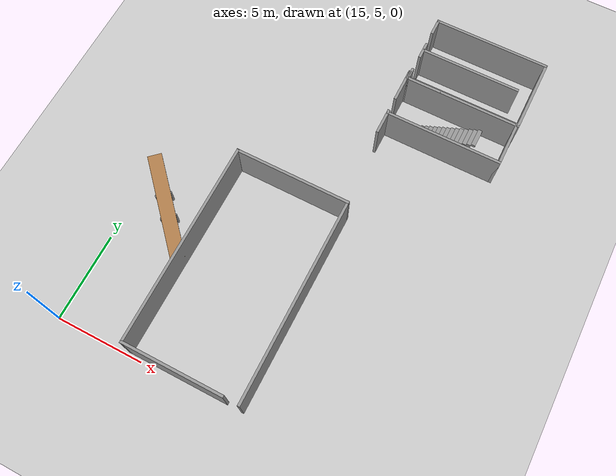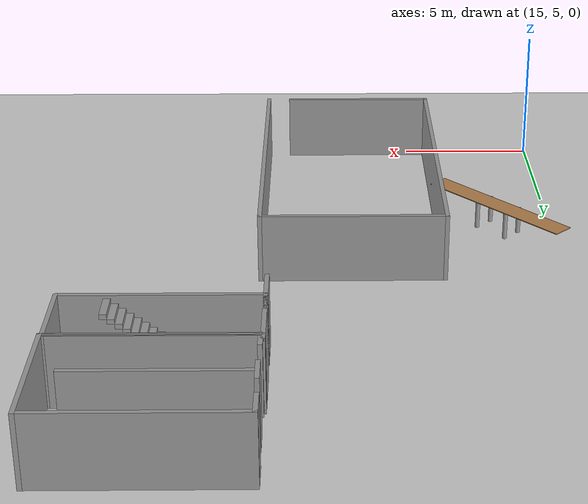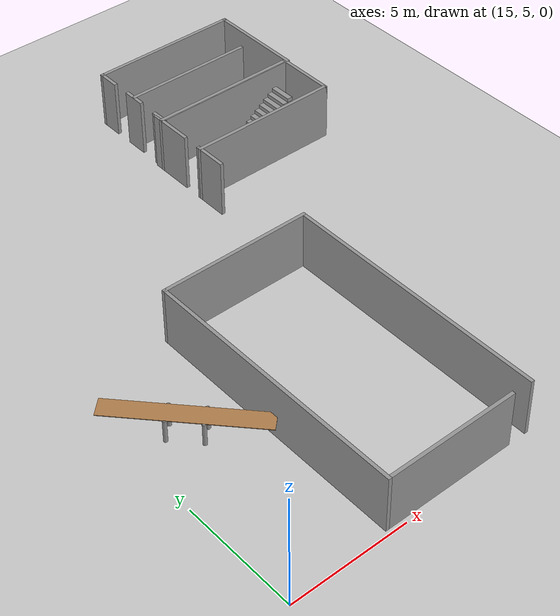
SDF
<sdf version="1.6">
 <world name="default">
  <model name="ground_plane">
   <static>1</static>
   <link name="link">
    <collision name="collision">
     <geometry><plane><normal>0 0 1</normal><size>100 100</size></plane></geometry>
     <surface>
      <contact><collide_bitmask>65535</collide_bitmask></contact>
      <friction><ode><mu>100</mu><mu2>50</mu2></ode></friction>
     </surface>
    </collision>
    <visual name="visual">
     <cast_shadows>0</cast_shadows>
     <geometry><plane><normal>0 0 1</normal><size>100 100</size></plane></geometry>
     <material>
      <script><uri>file://media/materials/scripts/gazebo.material</uri><name>Gazebo/Grey</name></script>
     </material>
    </visual>
   </link>
  </model>
  <model name="tables">
   <link name="link_clone">
    <inertial>
     <inertia><ixx>0</ixx><ixy>0</ixy><ixz>0</ixz><iyy>0</iyy><iyz>0</iyz><izz>0</izz></inertia>
     <mass>0</mass>
    </inertial>
    <pose>5.11817 -1.9765 0 0 0 -0.822567</pose>
    <visual name="back_right_leg">
     <pose>-0.68 -0.38 0.5 0 -0 0</pose>
     <geometry><cylinder><radius>0.0825123</radius><length>1</length></cylinder></geometry>
     <material>
      <script><uri>file://media/materials/scripts/gazebo.material</uri><name>Gazebo/Grey</name></script>
      <shader type="pixel"/>
     </material>
    </visual>
    <visual name="back_left_leg">
     <pose>-0.68 0.38 0.5 0 -0 0</pose>
     <geometry><cylinder><radius>0.0825123</radius><length>1</length></cylinder></geometry>
     <material>
      <script><uri>file://media/materials/scripts/gazebo.material</uri><name>Gazebo/Grey</name></script>
      <shader type="pixel"/>
     </material>
    </visual>
    <visual name="front_left_leg">
     <pose>0.68 0.38 0.5 0 -0 0</pose>
     <geometry><cylinder><radius>0.0825123</radius><length>1</length></cylinder></geometry>
     <material>
      <script><uri>file://media/materials/scripts/gazebo.material</uri><name>Gazebo/Grey</name></script>
      <shader type="pixel"/>
     </material>
    </visual>
    <visual name="front_right_leg">
     <pose>0.68 -0.38 0.5 0 -0 0</pose>
     <geometry><cylinder><radius>0.0825123</radius><length>1</length></cylinder></geometry>
     <material>
      <script><uri>file://media/materials/scripts/gazebo.material</uri><name>Gazebo/Grey</name></script>
      <shader type="pixel"/>
     </material>
    </visual>
    <visual name="visual1">
     <pose>0 0 1 0 -0 0</pose>
     <geometry><box><size>6.1884 0.8 0.03</size></box></geometry>
     <material>
      <script><uri>file://media/materials/scripts/gazebo.material</uri><name>Gazebo/Wood</name></script>
      <shader type="pixel"/>
     </material>
    </visual>
    <collision name="surface">
     <pose>0 0 1 0 -0 0</pose>
     <geometry><box><size>6.1884 0.8 0.03</size></box></geometry>
     <surface>
      <friction>
       <ode><mu>1</mu><mu2>1</mu2><fdir1>0 0 0</fdir1><slip1>0</slip1><slip2>0</slip2></ode>
       <torsional>
        <coefficient>1</coefficient>
        <patch_radius>0</patch_radius>
        <surface_radius>0</surface_radius>
        <use_patch_radius>1</use_patch_radius>
        <ode><slip>0</slip></ode>
       </torsional>
      </friction>
      <bounce><restitution_coefficient>0</restitution_coefficient><threshold>1e+06</threshold></bounce>
      <contact>
       <collide_without_contact>0</collide_without_contact>
       <collide_without_contact_bitmask>1</collide_without_contact_bitmask>
       <collide_bitmask>1</collide_bitmask>
       <ode>
        <soft_cfm>0</soft_cfm>
        <soft_erp>0.2</soft_erp>
        <kp>1e+13</kp>
        <kd>1</kd>
        <max_vel>0.01</max_vel>
        <min_depth>0</min_depth>
       </ode>
       <bullet>
        <split_impulse>1</split_impulse>
        <split_impulse_penetration_threshold>-0.01</split_impulse_penetration_threshold>
        <soft_cfm>0</soft_cfm>
        <soft_erp>0.2</soft_erp>
        <kp>1e+13</kp>
        <kd>1</kd>
       </bullet>
      </contact>
     </surface>
    </collision>
    <collision name="front_left_leg_0">
     <pose>0.68 0.38 0.5 0 -0 0</pose>
     <geometry><cylinder><radius>0.082512</radius><length>1</length></cylinder></geometry>
     <surface>
      <friction>
       <ode><mu>1</mu><mu2>1</mu2><fdir1>0 0 0</fdir1><slip1>0</slip1><slip2>0</slip2></ode>
       <torsional>
        <coefficient>1</coefficient>
        <patch_radius>0</patch_radius>
        <surface_radius>0</surface_radius>
        <use_patch_radius>1</use_patch_radius>
        <ode><slip>0</slip></ode>
       </torsional>
      </friction>
      <bounce><restitution_coefficient>0</restitution_coefficient><threshold>1e+06</threshold></bounce>
      <contact>
       <collide_without_contact>0</collide_without_contact>
       <collide_without_contact_bitmask>1</collide_without_contact_bitmask>
       <collide_bitmask>1</collide_bitmask>
       <ode>
        <soft_cfm>0</soft_cfm>
        <soft_erp>0.2</soft_erp>
        <kp>1e+13</kp>
        <kd>1</kd>
        <max_vel>0.01</max_vel>
        <min_depth>0</min_depth>
       </ode>
       <bullet>
        <split_impulse>1</split_impulse>
        <split_impulse_penetration_threshold>-0.01</split_impulse_penetration_threshold>
        <soft_cfm>0</soft_cfm>
        <soft_erp>0.2</soft_erp>
        <kp>1e+13</kp>
        <kd>1</kd>
       </bullet>
      </contact>
     </surface>
    </collision>
    <collision name="front_right_leg_0">
     <pose>0.68 -0.38 0.5 0 -0 0</pose>
     <geometry><cylinder><radius>0.082512</radius><length>1</length></cylinder></geometry>
     <surface>
      <friction>
       <ode><mu>1</mu><mu2>1</mu2><fdir1>0 0 0</fdir1><slip1>0</slip1><slip2>0</slip2></ode>
       <torsional>
        <coefficient>1</coefficient>
        <patch_radius>0</patch_radius>
        <surface_radius>0</surface_radius>
        <use_patch_radius>1</use_patch_radius>
        <ode><slip>0</slip></ode>
       </torsional>
      </friction>
      <bounce><restitution_coefficient>0</restitution_coefficient><threshold>1e+06</threshold></bounce>
      <contact>
       <collide_without_contact>0</collide_without_contact>
       <collide_without_contact_bitmask>1</collide_without_contact_bitmask>
       <collide_bitmask>1</collide_bitmask>
       <ode>
        <soft_cfm>0</soft_cfm>
        <soft_erp>0.2</soft_erp>
        <kp>1e+13</kp>
        <kd>1</kd>
        <max_vel>0.01</max_vel>
        <min_depth>0</min_depth>
       </ode>
       <bullet>
        <split_impulse>1</split_impulse>
        <split_impulse_penetration_threshold>-0.01</split_impulse_penetration_threshold>
        <soft_cfm>0</soft_cfm>
        <soft_erp>0.2</soft_erp>
        <kp>1e+13</kp>
        <kd>1</kd>
       </bullet>
      </contact>
     </surface>
    </collision>
    <collision name="back_left_leg_0">
     <pose>-0.68 0.38 0.5 0 -0 0</pose>
     <geometry><cylinder><radius>0.082512</radius><length>1</length></cylinder></geometry>
     <surface>
      <friction>
       <ode><mu>1</mu><mu2>1</mu2><fdir1>0 0 0</fdir1><slip1>0</slip1><slip2>0</slip2></ode>
       <torsional>
        <coefficient>1</coefficient>
        <patch_radius>0</patch_radius>
        <surface_radius>0</surface_radius>
        <use_patch_radius>1</use_patch_radius>
        <ode><slip>0</slip></ode>
       </torsional>
      </friction>
      <bounce><restitution_coefficient>0</restitution_coefficient><threshold>1e+06</threshold></bounce>
      <contact>
       <collide_without_contact>0</collide_without_contact>
       <collide_without_contact_bitmask>1</collide_without_contact_bitmask>
       <collide_bitmask>1</collide_bitmask>
       <ode>
        <soft_cfm>0</soft_cfm>
        <soft_erp>0.2</soft_erp>
        <kp>1e+13</kp>
        <kd>1</kd>
        <max_vel>0.01</max_vel>
        <min_depth>0</min_depth>
       </ode>
       <bullet>
        <split_impulse>1</split_impulse>
        <split_impulse_penetration_threshold>-0.01</split_impulse_penetration_threshold>
        <soft_cfm>0</soft_cfm>
        <soft_erp>0.2</soft_erp>
        <kp>1e+13</kp>
        <kd>1</kd>
       </bullet>
      </contact>
     </surface>
    </collision>
    <collision name="back_right_leg_0">
     <pose>-0.68 -0.38 0.5 0 -0 0</pose>
     <geometry><cylinder><radius>0.082512</radius><length>1</length></cylinder></geometry>
     <surface>
      <friction>
       <ode><mu>1</mu><mu2>1</mu2><fdir1>0 0 0</fdir1><slip1>0</slip1><slip2>0</slip2></ode>
       <torsional>
        <coefficient>1</coefficient>
        <patch_radius>0</patch_radius>
        <surface_radius>0</surface_radius>
        <use_patch_radius>1</use_patch_radius>
        <ode><slip>0</slip></ode>
       </torsional>
      </friction>
      <bounce><restitution_coefficient>0</restitution_coefficient><threshold>1e+06</threshold></bounce>
      <contact>
       <collide_without_contact>0</collide_without_contact>
       <collide_without_contact_bitmask>1</collide_without_contact_bitmask>
       <collide_bitmask>1</collide_bitmask>
       <ode>
        <soft_cfm>0</soft_cfm>
        <soft_erp>0.2</soft_erp>
        <kp>1e+13</kp>
        <kd>1</kd>
        <max_vel>0.01</max_vel>
        <min_depth>0</min_depth>
       </ode>
       <bullet>
        <split_impulse>1</split_impulse>
        <split_impulse_penetration_threshold>-0.01</split_impulse_penetration_threshold>
        <soft_cfm>0</soft_cfm>
        <soft_erp>0.2</soft_erp>
        <kp>1e+13</kp>
        <kd>1</kd>
       </bullet>
      </contact>
     </surface>
    </collision>
   </link>
   <static>1</static>
   <pose>11.8893 14.6757 0 0 -0 0</pose>
  </model>
  <model name="Staircase_4">
   <pose>28.6752 23.2459 0 0 -0 0</pose>
   <link name="Stairs_0">
    <visual name="Stairs_0_Visual_0">
     <pose>-1.63333 -0 0.083333 0 -0 1.5708</pose>
     <geometry><box><size>1 0.233333 0.166667</size></box></geometry>
     <material>
      <script><uri>file://media/materials/scripts/gazebo.material</uri><name>Gazebo/Grey</name></script>
      <ambient>1 1 1 1</ambient>
     </material>
     <meta><layer>0</layer></meta>
    </visual>
    <collision name="Stairs_0_Collision_0">
     <geometry><box><size>1 0.233333 0.166667</size></box></geometry>
     <pose>-1.63333 -0 0.083333 0 -0 1.5708</pose>
    </collision>
    <visual name="Stairs_0_Visual_1">
     <pose>-1.4 -0 0.25 0 -0 1.5708</pose>
     <geometry><box><size>1 0.233333 0.166667</size></box></geometry>
     <material>
      <script><uri>file://media/materials/scripts/gazebo.material</uri><name>Gazebo/Grey</name></script>
      <ambient>1 1 1 1</ambient>
     </material>
     <meta><layer>0</layer></meta>
    </visual>
    <collision name="Stairs_0_Collision_1">
     <geometry><box><size>1 0.233333 0.166667</size></box></geometry>
     <pose>-1.4 -0 0.25 0 -0 1.5708</pose>
    </collision>
    <visual name="Stairs_0_Visual_2">
     <pose>-1.16667 -0 0.416667 0 -0 1.5708</pose>
     <geometry><box><size>1 0.233333 0.166667</size></box></geometry>
     <material>
      <script><uri>file://media/materials/scripts/gazebo.material</uri><name>Gazebo/Grey</name></script>
      <ambient>1 1 1 1</ambient>
     </material>
     <meta><layer>0</layer></meta>
    </visual>
    <collision name="Stairs_0_Collision_2">
     <geometry><box><size>1 0.233333 0.166667</size></box></geometry>
     <pose>-1.16667 -0 0.416667 0 -0 1.5708</pose>
    </collision>
    <visual name="Stairs_0_Visual_3">
     <pose>-0.933333 -0 0.583333 0 -0 1.5708</pose>
     <geometry><box><size>1 0.233333 0.166667</size></box></geometry>
     <material>
      <script><uri>file://media/materials/scripts/gazebo.material</uri><name>Gazebo/Grey</name></script>
      <ambient>1 1 1 1</ambient>
     </material>
     <meta><layer>0</layer></meta>
    </visual>
    <collision name="Stairs_0_Collision_3">
     <geometry><box><size>1 0.233333 0.166667</size></box></geometry>
     <pose>-0.933333 -0 0.583333 0 -0 1.5708</pose>
    </collision>
    <visual name="Stairs_0_Visual_4">
     <pose>-0.7 0 0.75 0 -0 1.5708</pose>
     <geometry><box><size>1 0.233333 0.166667</size></box></geometry>
     <material>
      <script><uri>file://media/materials/scripts/gazebo.material</uri><name>Gazebo/Grey</name></script>
      <ambient>1 1 1 1</ambient>
     </material>
     <meta><layer>0</layer></meta>
    </visual>
    <collision name="Stairs_0_Collision_4">
     <geometry><box><size>1 0.233333 0.166667</size></box></geometry>
     <pose>-0.7 0 0.75 0 -0 1.5708</pose>
    </collision>
    <visual name="Stairs_0_Visual_5">
     <pose>-0.466667 0 0.916667 0 -0 1.5708</pose>
     <geometry><box><size>1 0.233333 0.166667</size></box></geometry>
     <material>
      <script><uri>file://media/materials/scripts/gazebo.material</uri><name>Gazebo/Grey</name></script>
      <ambient>1 1 1 1</ambient>
     </material>
     <meta><layer>0</layer></meta>
    </visual>
    <collision name="Stairs_0_Collision_5">
     <geometry><box><size>1 0.233333 0.166667</size></box></geometry>
     <pose>-0.466667 0 0.916667 0 -0 1.5708</pose>
    </collision>
    <visual name="Stairs_0_Visual_6">
     <pose>-0.233333 0 1.08333 0 -0 1.5708</pose>
     <geometry><box><size>1 0.233333 0.166667</size></box></geometry>
     <material>
      <script><uri>file://media/materials/scripts/gazebo.material</uri><name>Gazebo/Grey</name></script>
      <ambient>1 1 1 1</ambient>
     </material>
     <meta><layer>0</layer></meta>
    </visual>
    <collision name="Stairs_0_Collision_6">
     <geometry><box><size>1 0.233333 0.166667</size></box></geometry>
     <pose>-0.233333 0 1.08333 0 -0 1.5708</pose>
    </collision>
    <visual name="Stairs_0_Visual_7">
     <pose>0 0 1.25 0 -0 1.5708</pose>
     <geometry><box><size>1 0.233333 0.166667</size></box></geometry>
     <material>
      <script><uri>file://media/materials/scripts/gazebo.material</uri><name>Gazebo/Grey</name></script>
      <ambient>1 1 1 1</ambient>
     </material>
     <meta><layer>0</layer></meta>
    </visual>
    <collision name="Stairs_0_Collision_7">
     <geometry><box><size>1 0.233333 0.166667</size></box></geometry>
     <pose>0 0 1.25 0 -0 1.5708</pose>
    </collision>
    <visual name="Stairs_0_Visual_8">
     <pose>0.233333 0 1.41667 0 -0 1.5708</pose>
     <geometry><box><size>1 0.233333 0.166667</size></box></geometry>
     <material>
      <script><uri>file://media/materials/scripts/gazebo.material</uri><name>Gazebo/Grey</name></script>
      <ambient>1 1 1 1</ambient>
     </material>
     <meta><layer>0</layer></meta>
    </visual>
    <collision name="Stairs_0_Collision_8">
     <geometry><box><size>1 0.233333 0.166667</size></box></geometry>
     <pose>0.233333 0 1.41667 0 -0 1.5708</pose>
    </collision>
    <visual name="Stairs_0_Visual_9">
     <pose>0.466667 0 1.58333 0 -0 1.5708</pose>
     <geometry><box><size>1 0.233333 0.166667</size></box></geometry>
     <material>
      <script><uri>file://media/materials/scripts/gazebo.material</uri><name>Gazebo/Grey</name></script>
      <ambient>1 1 1 1</ambient>
     </material>
     <meta><layer>0</layer></meta>
    </visual>
    <collision name="Stairs_0_Collision_9">
     <geometry><box><size>1 0.233333 0.166667</size></box></geometry>
     <pose>0.466667 0 1.58333 0 -0 1.5708</pose>
    </collision>
    <visual name="Stairs_0_Visual_10">
     <pose>0.7 0 1.75 0 -0 1.5708</pose>
     <geometry><box><size>1 0.233333 0.166667</size></box></geometry>
     <material>
      <script><uri>file://media/materials/scripts/gazebo.material</uri><name>Gazebo/Grey</name></script>
      <ambient>1 1 1 1</ambient>
     </material>
     <meta><layer>0</layer></meta>
    </visual>
    <collision name="Stairs_0_Collision_10">
     <geometry><box><size>1 0.233333 0.166667</size></box></geometry>
     <pose>0.7 0 1.75 0 -0 1.5708</pose>
    </collision>
    <visual name="Stairs_0_Visual_11">
     <pose>0.933334 0 1.91667 0 -0 1.5708</pose>
     <geometry><box><size>1 0.233333 0.166667</size></box></geometry>
     <material>
      <script><uri>file://media/materials/scripts/gazebo.material</uri><name>Gazebo/Grey</name></script>
      <ambient>1 1 1 1</ambient>
     </material>
     <meta><layer>0</layer></meta>
    </visual>
    <collision name="Stairs_0_Collision_11">
     <geometry><box><size>1 0.233333 0.166667</size></box></geometry>
     <pose>0.933334 0 1.91667 0 -0 1.5708</pose>
    </collision>
    <visual name="Stairs_0_Visual_12">
     <pose>1.16667 0 2.08333 0 -0 1.5708</pose>
     <geometry><box><size>1 0.233333 0.166667</size></box></geometry>
     <material>
      <script><uri>file://media/materials/scripts/gazebo.material</uri><name>Gazebo/Grey</name></script>
      <ambient>1 1 1 1</ambient>
     </material>
     <meta><layer>0</layer></meta>
    </visual>
    <collision name="Stairs_0_Collision_12">
     <geometry><box><size>1 0.233333 0.166667</size></box></geometry>
     <pose>1.16667 0 2.08333 0 -0 1.5708</pose>
    </collision>
    <visual name="Stairs_0_Visual_13">
     <pose>1.4 0 2.25 0 -0 1.5708</pose>
     <geometry><box><size>1 0.233333 0.166667</size></box></geometry>
     <material>
      <script><uri>file://media/materials/scripts/gazebo.material</uri><name>Gazebo/Grey</name></script>
      <ambient>1 1 1 1</ambient>
     </material>
     <meta><layer>0</layer></meta>
    </visual>
    <collision name="Stairs_0_Collision_13">
     <geometry><box><size>1 0.233333 0.166667</size></box></geometry>
     <pose>1.4 0 2.25 0 -0 1.5708</pose>
    </collision>
    <visual name="Stairs_0_Visual_14">
     <pose>1.63333 0 2.41667 0 -0 1.5708</pose>
     <geometry><box><size>1 0.233333 0.166667</size></box></geometry>
     <material>
      <script><uri>file://media/materials/scripts/gazebo.material</uri><name>Gazebo/Grey</name></script>
      <ambient>1 1 1 1</ambient>
     </material>
     <meta><layer>0</layer></meta>
    </visual>
    <collision name="Stairs_0_Collision_14">
     <geometry><box><size>1 0.233333 0.166667</size></box></geometry>
     <pose>1.63333 0 2.41667 0 -0 1.5708</pose>
    </collision>
   </link>
   <static>1</static>
  </model>
  <model name="108">
   <link name="Wall_5">
    <pose>3.259 0 0 0 -0 1.5708</pose>
    <visual name="Wall_5_Visual">
     <pose>0 0 1.25 0 -0 0</pose>
     <geometry><box><size>11.668 0.15 2.5</size></box></geometry>
     <material>
      <script><uri>file://media/materials/scripts/gazebo.material</uri><name>Gazebo/Grey</name></script>
      <ambient>1 1 1 1</ambient>
      <shader type="pixel"/>
     </material>
     <meta><layer>0</layer></meta>
    </visual>
    <collision name="Wall_5_Collision">
     <pose>0 0 1.25 0 -0 0</pose>
     <geometry><box><size>11.668 0.15 2.5</size></box></geometry>
     <surface>
      <friction>
       <ode><mu>1</mu><mu2>1</mu2><fdir1>0 0 0</fdir1><slip1>0</slip1><slip2>0</slip2></ode>
       <torsional>
        <coefficient>1</coefficient>
        <patch_radius>0</patch_radius>
        <surface_radius>0</surface_radius>
        <use_patch_radius>1</use_patch_radius>
        <ode><slip>0</slip></ode>
       </torsional>
      </friction>
      <bounce><restitution_coefficient>0</restitution_coefficient><threshold>1e+06</threshold></bounce>
      <contact>
       <collide_without_contact>0</collide_without_contact>
       <collide_without_contact_bitmask>1</collide_without_contact_bitmask>
       <collide_bitmask>1</collide_bitmask>
       <ode>
        <soft_cfm>0</soft_cfm>
        <soft_erp>0.2</soft_erp>
        <kp>1e+13</kp>
        <kd>1</kd>
        <max_vel>0.01</max_vel>
        <min_depth>0</min_depth>
       </ode>
       <bullet>
        <split_impulse>1</split_impulse>
        <split_impulse_penetration_threshold>-0.01</split_impulse_penetration_threshold>
        <soft_cfm>0</soft_cfm>
        <soft_erp>0.2</soft_erp>
        <kp>1e+13</kp>
        <kd>1</kd>
       </bullet>
      </contact>
     </surface>
    </collision>
   </link>
   <link name="Wall_6">
    <pose>0 5.759 0 0 -0 3.14159</pose>
    <visual name="Wall_6_Visual">
     <pose>0 0 1.25 0 -0 0</pose>
     <geometry><box><size>6.668 0.15 2.5</size></box></geometry>
     <material>
      <script><uri>file://media/materials/scripts/gazebo.material</uri><name>Gazebo/Grey</name></script>
      <ambient>1 1 1 1</ambient>
      <shader type="pixel"/>
     </material>
     <meta><layer>0</layer></meta>
    </visual>
    <collision name="Wall_6_Collision">
     <pose>0 0 1.25 0 -0 0</pose>
     <geometry><box><size>6.668 0.15 2.5</size></box></geometry>
     <surface>
      <friction>
       <ode><mu>1</mu><mu2>1</mu2><fdir1>0 0 0</fdir1><slip1>0</slip1><slip2>0</slip2></ode>
       <torsional>
        <coefficient>1</coefficient>
        <patch_radius>0</patch_radius>
        <surface_radius>0</surface_radius>
        <use_patch_radius>1</use_patch_radius>
        <ode><slip>0</slip></ode>
       </torsional>
      </friction>
      <bounce><restitution_coefficient>0</restitution_coefficient><threshold>1e+06</threshold></bounce>
      <contact>
       <collide_without_contact>0</collide_without_contact>
       <collide_without_contact_bitmask>1</collide_without_contact_bitmask>
       <collide_bitmask>1</collide_bitmask>
       <ode>
        <soft_cfm>0</soft_cfm>
        <soft_erp>0.2</soft_erp>
        <kp>1e+13</kp>
        <kd>1</kd>
        <max_vel>0.01</max_vel>
        <min_depth>0</min_depth>
       </ode>
       <bullet>
        <split_impulse>1</split_impulse>
        <split_impulse_penetration_threshold>-0.01</split_impulse_penetration_threshold>
        <soft_cfm>0</soft_cfm>
        <soft_erp>0.2</soft_erp>
        <kp>1e+13</kp>
        <kd>1</kd>
       </bullet>
      </contact>
     </surface>
    </collision>
   </link>
   <link name="Wall_7">
    <pose>-3.259 0 0 0 0 -1.5708</pose>
    <visual name="Wall_7_Visual">
     <pose>0 0 1.25 0 -0 0</pose>
     <geometry><box><size>11.6684 0.15 2.5</size></box></geometry>
     <material>
      <script><uri>file://media/materials/scripts/gazebo.material</uri><name>Gazebo/Grey</name></script>
      <ambient>1 1 1 1</ambient>
      <shader type="pixel"/>
     </material>
     <meta><layer>0</layer></meta>
    </visual>
    <collision name="Wall_7_Collision">
     <pose>0 0 1.25 0 -0 0</pose>
     <geometry><box><size>11.6684 0.15 2.5</size></box></geometry>
     <surface>
      <friction>
       <ode><mu>1</mu><mu2>1</mu2><fdir1>0 0 0</fdir1><slip1>0</slip1><slip2>0</slip2></ode>
       <torsional>
        <coefficient>1</coefficient>
        <patch_radius>0</patch_radius>
        <surface_radius>0</surface_radius>
        <use_patch_radius>1</use_patch_radius>
        <ode><slip>0</slip></ode>
       </torsional>
      </friction>
      <bounce><restitution_coefficient>0</restitution_coefficient><threshold>1e+06</threshold></bounce>
      <contact>
       <collide_without_contact>0</collide_without_contact>
       <collide_without_contact_bitmask>1</collide_without_contact_bitmask>
       <collide_bitmask>1</collide_bitmask>
       <ode>
        <soft_cfm>0</soft_cfm>
        <soft_erp>0.2</soft_erp>
        <kp>1e+13</kp>
        <kd>1</kd>
        <max_vel>0.01</max_vel>
        <min_depth>0</min_depth>
       </ode>
       <bullet>
        <split_impulse>1</split_impulse>
        <split_impulse_penetration_threshold>-0.01</split_impulse_penetration_threshold>
        <soft_cfm>0</soft_cfm>
        <soft_erp>0.2</soft_erp>
        <kp>1e+13</kp>
        <kd>1</kd>
       </bullet>
      </contact>
     </surface>
    </collision>
   </link>
   <link name="Wall_9">
    <pose>-0.459 -5.759 0 0 -0 0</pose>
    <visual name="Wall_9_Visual">
     <pose>0 0 1.25 0 -0 0</pose>
     <geometry><box><size>5.75 0.15 2.5</size></box></geometry>
     <material>
      <script><uri>file://media/materials/scripts/gazebo.material</uri><name>Gazebo/Grey</name></script>
      <ambient>1 1 1 1</ambient>
      <shader type="pixel"/>
     </material>
     <meta><layer>0</layer></meta>
    </visual>
    <collision name="Wall_9_Collision">
     <pose>0 0 1.25 0 -0 0</pose>
     <geometry><box><size>5.75 0.15 2.5</size></box></geometry>
     <surface>
      <friction>
       <ode><mu>1</mu><mu2>1</mu2><fdir1>0 0 0</fdir1><slip1>0</slip1><slip2>0</slip2></ode>
       <torsional>
        <coefficient>1</coefficient>
        <patch_radius>0</patch_radius>
        <surface_radius>0</surface_radius>
        <use_patch_radius>1</use_patch_radius>
        <ode><slip>0</slip></ode>
       </torsional>
      </friction>
      <bounce><restitution_coefficient>0</restitution_coefficient><threshold>1e+06</threshold></bounce>
      <contact>
       <collide_without_contact>0</collide_without_contact>
       <collide_without_contact_bitmask>1</collide_without_contact_bitmask>
       <collide_bitmask>1</collide_bitmask>
       <ode>
        <soft_cfm>0</soft_cfm>
        <soft_erp>0.2</soft_erp>
        <kp>1e+13</kp>
        <kd>1</kd>
        <max_vel>0.01</max_vel>
        <min_depth>0</min_depth>
       </ode>
       <bullet>
        <split_impulse>1</split_impulse>
        <split_impulse_penetration_threshold>-0.01</split_impulse_penetration_threshold>
        <soft_cfm>0</soft_cfm>
        <soft_erp>0.2</soft_erp>
        <kp>1e+13</kp>
        <kd>1</kd>
       </bullet>
      </contact>
     </surface>
    </collision>
   </link>
   <static>1</static>
   <pose>22.5627 11.0031 0 0 -0 0</pose>
  </model>
  <model name="198C/D">
   <link name="Wall_71">
    <pose>0 -2.092 0 0 -0 0</pose>
    <visual name="Wall_71_Visual">
     <pose>0 0 1.25 0 -0 0</pose>
     <geometry><box><size>6.668 0.15 2.5</size></box></geometry>
     <material>
      <script><uri>file://media/materials/scripts/gazebo.material</uri><name>Gazebo/Grey</name></script>
      <ambient>1 1 1 1</ambient>
      <shader type="pixel"/>
     </material>
     <meta><layer>0</layer></meta>
    </visual>
    <collision name="Wall_71_Collision">
     <pose>0 0 1.25 0 -0 0</pose>
     <geometry><box><size>6.668 0.15 2.5</size></box></geometry>
     <surface>
      <friction>
       <ode><mu>1</mu><mu2>1</mu2><fdir1>0 0 0</fdir1><slip1>0</slip1><slip2>0</slip2></ode>
       <torsional>
        <coefficient>1</coefficient>
        <patch_radius>0</patch_radius>
        <surface_radius>0</surface_radius>
        <use_patch_radius>1</use_patch_radius>
        <ode><slip>0</slip></ode>
       </torsional>
      </friction>
      <bounce><restitution_coefficient>0</restitution_coefficient><threshold>1e+06</threshold></bounce>
      <contact>
       <collide_without_contact>0</collide_without_contact>
       <collide_without_contact_bitmask>1</collide_without_contact_bitmask>
       <collide_bitmask>1</collide_bitmask>
       <ode>
        <soft_cfm>0</soft_cfm>
        <soft_erp>0.2</soft_erp>
        <kp>1e+13</kp>
        <kd>1</kd>
        <max_vel>0.01</max_vel>
        <min_depth>0</min_depth>
       </ode>
       <bullet>
        <split_impulse>1</split_impulse>
        <split_impulse_penetration_threshold>-0.01</split_impulse_penetration_threshold>
        <soft_cfm>0</soft_cfm>
        <soft_erp>0.2</soft_erp>
        <kp>1e+13</kp>
        <kd>1</kd>
       </bullet>
      </contact>
     </surface>
    </collision>
   </link>
   <link name="Wall_72">
    <pose>3.259 0 0 0 -0 1.5708</pose>
    <visual name="Wall_72_Visual">
     <pose>0 0 1.25 0 -0 0</pose>
     <geometry><box><size>4.334 0.15 2.5</size></box></geometry>
     <material>
      <script><uri>file://media/materials/scripts/gazebo.material</uri><name>Gazebo/Grey</name></script>
      <ambient>1 1 1 1</ambient>
      <shader type="pixel"/>
     </material>
     <meta><layer>0</layer></meta>
    </visual>
    <collision name="Wall_72_Collision">
     <pose>0 0 1.25 0 -0 0</pose>
     <geometry><box><size>4.334 0.15 2.5</size></box></geometry>
     <surface>
      <friction>
       <ode><mu>1</mu><mu2>1</mu2><fdir1>0 0 0</fdir1><slip1>0</slip1><slip2>0</slip2></ode>
       <torsional>
        <coefficient>1</coefficient>
        <patch_radius>0</patch_radius>
        <surface_radius>0</surface_radius>
        <use_patch_radius>1</use_patch_radius>
        <ode><slip>0</slip></ode>
       </torsional>
      </friction>
      <bounce><restitution_coefficient>0</restitution_coefficient><threshold>1e+06</threshold></bounce>
      <contact>
       <collide_without_contact>0</collide_without_contact>
       <collide_without_contact_bitmask>1</collide_without_contact_bitmask>
       <collide_bitmask>1</collide_bitmask>
       <ode>
        <soft_cfm>0</soft_cfm>
        <soft_erp>0.2</soft_erp>
        <kp>1e+13</kp>
        <kd>1</kd>
        <max_vel>0.01</max_vel>
        <min_depth>0</min_depth>
       </ode>
       <bullet>
        <split_impulse>1</split_impulse>
        <split_impulse_penetration_threshold>-0.01</split_impulse_penetration_threshold>
        <soft_cfm>0</soft_cfm>
        <soft_erp>0.2</soft_erp>
        <kp>1e+13</kp>
        <kd>1</kd>
       </bullet>
      </contact>
     </surface>
    </collision>
   </link>
   <link name="Wall_73">
    <pose>0 2.092 0 0 -0 3.14159</pose>
    <visual name="Wall_73_Visual">
     <pose>0 0 1.25 0 -0 0</pose>
     <geometry><box><size>6.668 0.15 2.5</size></box></geometry>
     <material>
      <script><uri>file://media/materials/scripts/gazebo.material</uri><name>Gazebo/Grey</name></script>
      <ambient>1 1 1 1</ambient>
      <shader type="pixel"/>
     </material>
     <meta><layer>0</layer></meta>
    </visual>
    <collision name="Wall_73_Collision">
     <pose>0 0 1.25 0 -0 0</pose>
     <geometry><box><size>6.668 0.15 2.5</size></box></geometry>
     <surface>
      <friction>
       <ode><mu>1</mu><mu2>1</mu2><fdir1>0 0 0</fdir1><slip1>0</slip1><slip2>0</slip2></ode>
       <torsional>
        <coefficient>1</coefficient>
        <patch_radius>0</patch_radius>
        <surface_radius>0</surface_radius>
        <use_patch_radius>1</use_patch_radius>
        <ode><slip>0</slip></ode>
       </torsional>
      </friction>
      <bounce><restitution_coefficient>0</restitution_coefficient><threshold>1e+06</threshold></bounce>
      <contact>
       <collide_without_contact>0</collide_without_contact>
       <collide_without_contact_bitmask>1</collide_without_contact_bitmask>
       <collide_bitmask>1</collide_bitmask>
       <ode>
        <soft_cfm>0</soft_cfm>
        <soft_erp>0.2</soft_erp>
        <kp>1e+13</kp>
        <kd>1</kd>
        <max_vel>0.01</max_vel>
        <min_depth>0</min_depth>
       </ode>
       <bullet>
        <split_impulse>1</split_impulse>
        <split_impulse_penetration_threshold>-0.01</split_impulse_penetration_threshold>
        <soft_cfm>0</soft_cfm>
        <soft_erp>0.2</soft_erp>
        <kp>1e+13</kp>
        <kd>1</kd>
       </bullet>
      </contact>
     </surface>
    </collision>
   </link>
   <link name="Wall_78">
    <pose>-0.393448 -0.051035 0 0 -0 0</pose>
    <visual name="Wall_78_Visual">
     <pose>0 0 1.25 0 -0 0</pose>
     <geometry><box><size>5.75 0.15 2.5</size></box></geometry>
     <material>
      <script><uri>file://media/materials/scripts/gazebo.material</uri><name>Gazebo/Grey</name></script>
      <ambient>1 1 1 1</ambient>
      <shader type="pixel"/>
     </material>
     <meta><layer>0</layer></meta>
    </visual>
    <collision name="Wall_78_Collision">
     <pose>0 0 1.25 0 -0 0</pose>
     <geometry><box><size>5.75 0.15 2.5</size></box></geometry>
     <surface>
      <friction>
       <ode><mu>1</mu><mu2>1</mu2><fdir1>0 0 0</fdir1><slip1>0</slip1><slip2>0</slip2></ode>
       <torsional>
        <coefficient>1</coefficient>
        <patch_radius>0</patch_radius>
        <surface_radius>0</surface_radius>
        <use_patch_radius>1</use_patch_radius>
        <ode><slip>0</slip></ode>
       </torsional>
      </friction>
      <bounce><restitution_coefficient>0</restitution_coefficient><threshold>1e+06</threshold></bounce>
      <contact>
       <collide_without_contact>0</collide_without_contact>
       <collide_without_contact_bitmask>1</collide_without_contact_bitmask>
       <collide_bitmask>1</collide_bitmask>
       <ode>
        <soft_cfm>0</soft_cfm>
        <soft_erp>0.2</soft_erp>
        <kp>1e+13</kp>
        <kd>1</kd>
        <max_vel>0.01</max_vel>
        <min_depth>0</min_depth>
       </ode>
       <bullet>
        <split_impulse>1</split_impulse>
        <split_impulse_penetration_threshold>-0.01</split_impulse_penetration_threshold>
        <soft_cfm>0</soft_cfm>
        <soft_erp>0.2</soft_erp>
        <kp>1e+13</kp>
        <kd>1</kd>
       </bullet>
      </contact>
     </surface>
    </collision>
   </link>
   <link name="Wall_80">
    <pose>-3.259 1.667 0 0 0 -1.5708</pose>
    <visual name="Wall_80_Visual">
     <pose>0 0 1.25 0 -0 0</pose>
     <geometry><box><size>1 0.15 2.5</size></box></geometry>
     <material>
      <script><uri>file://media/materials/scripts/gazebo.material</uri><name>Gazebo/Grey</name></script>
      <ambient>1 1 1 1</ambient>
      <shader type="pixel"/>
     </material>
     <meta><layer>0</layer></meta>
    </visual>
    <collision name="Wall_80_Collision">
     <pose>0 0 1.25 0 -0 0</pose>
     <geometry><box><size>1 0.15 2.5</size></box></geometry>
     <surface>
      <friction>
       <ode><mu>1</mu><mu2>1</mu2><fdir1>0 0 0</fdir1><slip1>0</slip1><slip2>0</slip2></ode>
       <torsional>
        <coefficient>1</coefficient>
        <patch_radius>0</patch_radius>
        <surface_radius>0</surface_radius>
        <use_patch_radius>1</use_patch_radius>
        <ode><slip>0</slip></ode>
       </torsional>
      </friction>
      <bounce><restitution_coefficient>0</restitution_coefficient><threshold>1e+06</threshold></bounce>
      <contact>
       <collide_without_contact>0</collide_without_contact>
       <collide_without_contact_bitmask>1</collide_without_contact_bitmask>
       <collide_bitmask>1</collide_bitmask>
       <ode>
        <soft_cfm>0</soft_cfm>
        <soft_erp>0.2</soft_erp>
        <kp>1e+13</kp>
        <kd>1</kd>
        <max_vel>0.01</max_vel>
        <min_depth>0</min_depth>
       </ode>
       <bullet>
        <split_impulse>1</split_impulse>
        <split_impulse_penetration_threshold>-0.01</split_impulse_penetration_threshold>
        <soft_cfm>0</soft_cfm>
        <soft_erp>0.2</soft_erp>
        <kp>1e+13</kp>
        <kd>1</kd>
       </bullet>
      </contact>
     </surface>
    </collision>
   </link>
   <link name="Wall_82">
    <pose>-3.23733 -0.081091 0 0 0 -1.5708</pose>
    <visual name="Wall_82_Visual">
     <pose>0 0 1.25 0 -0 0</pose>
     <geometry><box><size>1 0.15 2.5</size></box></geometry>
     <material>
      <script><uri>file://media/materials/scripts/gazebo.material</uri><name>Gazebo/Grey</name></script>
      <ambient>1 1 1 1</ambient>
      <shader type="pixel"/>
     </material>
     <meta><layer>0</layer></meta>
    </visual>
    <collision name="Wall_82_Collision">
     <pose>0 0 1.25 0 -0 0</pose>
     <geometry><box><size>1 0.15 2.5</size></box></geometry>
     <surface>
      <friction>
       <ode><mu>1</mu><mu2>1</mu2><fdir1>0 0 0</fdir1><slip1>0</slip1><slip2>0</slip2></ode>
       <torsional>
        <coefficient>1</coefficient>
        <patch_radius>0</patch_radius>
        <surface_radius>0</surface_radius>
        <use_patch_radius>1</use_patch_radius>
        <ode><slip>0</slip></ode>
       </torsional>
      </friction>
      <bounce><restitution_coefficient>0</restitution_coefficient><threshold>1e+06</threshold></bounce>
      <contact>
       <collide_without_contact>0</collide_without_contact>
       <collide_without_contact_bitmask>1</collide_without_contact_bitmask>
       <collide_bitmask>1</collide_bitmask>
       <ode>
        <soft_cfm>0</soft_cfm>
        <soft_erp>0.2</soft_erp>
        <kp>1e+13</kp>
        <kd>1</kd>
        <max_vel>0.01</max_vel>
        <min_depth>0</min_depth>
       </ode>
       <bullet>
        <split_impulse>1</split_impulse>
        <split_impulse_penetration_threshold>-0.01</split_impulse_penetration_threshold>
        <soft_cfm>0</soft_cfm>
        <soft_erp>0.2</soft_erp>
        <kp>1e+13</kp>
        <kd>1</kd>
       </bullet>
      </contact>
     </surface>
    </collision>
   </link>
   <link name="Wall_84">
    <pose>-3.259 -1.792 0 0 -0 1.5708</pose>
    <visual name="Wall_84_Visual">
     <pose>0 0 1.25 0 -0 0</pose>
     <geometry><box><size>0.75 0.15 2.5</size></box></geometry>
     <material>
      <script><uri>file://media/materials/scripts/gazebo.material</uri><name>Gazebo/Grey</name></script>
      <ambient>1 1 1 1</ambient>
      <shader type="pixel"/>
     </material>
     <meta><layer>0</layer></meta>
    </visual>
    <collision name="Wall_84_Collision">
     <pose>0 0 1.25 0 -0 0</pose>
     <geometry><box><size>0.75 0.15 2.5</size></box></geometry>
     <surface>
      <friction>
       <ode><mu>1</mu><mu2>1</mu2><fdir1>0 0 0</fdir1><slip1>0</slip1><slip2>0</slip2></ode>
       <torsional>
        <coefficient>1</coefficient>
        <patch_radius>0</patch_radius>
        <surface_radius>0</surface_radius>
        <use_patch_radius>1</use_patch_radius>
        <ode><slip>0</slip></ode>
       </torsional>
      </friction>
      <bounce><restitution_coefficient>0</restitution_coefficient><threshold>1e+06</threshold></bounce>
      <contact>
       <collide_without_contact>0</collide_without_contact>
       <collide_without_contact_bitmask>1</collide_without_contact_bitmask>
       <collide_bitmask>1</collide_bitmask>
       <ode>
        <soft_cfm>0</soft_cfm>
        <soft_erp>0.2</soft_erp>
        <kp>1e+13</kp>
        <kd>1</kd>
        <max_vel>0.01</max_vel>
        <min_depth>0</min_depth>
       </ode>
       <bullet>
        <split_impulse>1</split_impulse>
        <split_impulse_penetration_threshold>-0.01</split_impulse_penetration_threshold>
        <soft_cfm>0</soft_cfm>
        <soft_erp>0.2</soft_erp>
        <kp>1e+13</kp>
        <kd>1</kd>
       </bullet>
      </contact>
     </surface>
    </collision>
   </link>
   <static>1</static>
   <pose>28.7557 27.0094 0 0 -0 0</pose>
  </model>
  <model name="197D">
   <link name="Wall_58">
    <pose>0 -0.8085 0 0 -0 0</pose>
    <visual name="Wall_58_Visual">
     <pose>0 0 1.25 0 -0 0</pose>
     <geometry><box><size>6.668 0.15 2.5</size></box></geometry>
     <material>
      <script><uri>file://media/materials/scripts/gazebo.material</uri><name>Gazebo/Grey</name></script>
      <ambient>1 1 1 1</ambient>
      <shader type="pixel"/>
     </material>
     <meta><layer>0</layer></meta>
    </visual>
    <collision name="Wall_58_Collision">
     <pose>0 0 1.25 0 -0 0</pose>
     <geometry><box><size>6.668 0.15 2.5</size></box></geometry>
     <surface>
      <friction>
       <ode><mu>1</mu><mu2>1</mu2><fdir1>0 0 0</fdir1><slip1>0</slip1><slip2>0</slip2></ode>
       <torsional>
        <coefficient>1</coefficient>
        <patch_radius>0</patch_radius>
        <surface_radius>0</surface_radius>
        <use_patch_radius>1</use_patch_radius>
        <ode><slip>0</slip></ode>
       </torsional>
      </friction>
      <bounce><restitution_coefficient>0</restitution_coefficient><threshold>1e+06</threshold></bounce>
      <contact>
       <collide_without_contact>0</collide_without_contact>
       <collide_without_contact_bitmask>1</collide_without_contact_bitmask>
       <collide_bitmask>1</collide_bitmask>
       <ode>
        <soft_cfm>0</soft_cfm>
        <soft_erp>0.2</soft_erp>
        <kp>1e+13</kp>
        <kd>1</kd>
        <max_vel>0.01</max_vel>
        <min_depth>0</min_depth>
       </ode>
       <bullet>
        <split_impulse>1</split_impulse>
        <split_impulse_penetration_threshold>-0.01</split_impulse_penetration_threshold>
        <soft_cfm>0</soft_cfm>
        <soft_erp>0.2</soft_erp>
        <kp>1e+13</kp>
        <kd>1</kd>
       </bullet>
      </contact>
     </surface>
    </collision>
   </link>
   <link name="Wall_59">
    <pose>3.259 0.450001 0 0 -0 1.5708</pose>
    <visual name="Wall_59_Visual">
     <pose>0 0 1.25 0 -0 0</pose>
     <geometry><box><size>2.667 0.15 2.5</size></box></geometry>
     <material>
      <script><uri>file://media/materials/scripts/gazebo.material</uri><name>Gazebo/Grey</name></script>
      <ambient>1 1 1 1</ambient>
      <shader type="pixel"/>
     </material>
     <meta><layer>0</layer></meta>
    </visual>
    <collision name="Wall_59_Collision">
     <pose>0 0 1.25 0 -0 0</pose>
     <geometry><box><size>2.667 0.15 2.5</size></box></geometry>
     <surface>
      <friction>
       <ode><mu>1</mu><mu2>1</mu2><fdir1>0 0 0</fdir1><slip1>0</slip1><slip2>0</slip2></ode>
       <torsional>
        <coefficient>1</coefficient>
        <patch_radius>0</patch_radius>
        <surface_radius>0</surface_radius>
        <use_patch_radius>1</use_patch_radius>
        <ode><slip>0</slip></ode>
       </torsional>
      </friction>
      <bounce><restitution_coefficient>0</restitution_coefficient><threshold>1e+06</threshold></bounce>
      <contact>
       <collide_without_contact>0</collide_without_contact>
       <collide_without_contact_bitmask>1</collide_without_contact_bitmask>
       <collide_bitmask>1</collide_bitmask>
       <ode>
        <soft_cfm>0</soft_cfm>
        <soft_erp>0.2</soft_erp>
        <kp>1e+13</kp>
        <kd>1</kd>
        <max_vel>0.01</max_vel>
        <min_depth>0</min_depth>
       </ode>
       <bullet>
        <split_impulse>1</split_impulse>
        <split_impulse_penetration_threshold>-0.01</split_impulse_penetration_threshold>
        <soft_cfm>0</soft_cfm>
        <soft_erp>0.2</soft_erp>
        <kp>1e+13</kp>
        <kd>1</kd>
       </bullet>
      </contact>
     </surface>
    </collision>
   </link>
   <link name="Wall_60">
    <pose>0 1.7085 0 0 -0 3.14159</pose>
    <visual name="Wall_60_Visual">
     <pose>0 0 1.25 0 -0 0</pose>
     <geometry><box><size>6.668 0.15 2.5</size></box></geometry>
     <material>
      <script><uri>file://media/materials/scripts/gazebo.material</uri><name>Gazebo/Grey</name></script>
      <ambient>1 1 1 1</ambient>
      <shader type="pixel"/>
     </material>
     <meta><layer>0</layer></meta>
    </visual>
    <collision name="Wall_60_Collision">
     <pose>0 0 1.25 0 -0 0</pose>
     <geometry><box><size>6.668 0.15 2.5</size></box></geometry>
     <surface>
      <friction>
       <ode><mu>1</mu><mu2>1</mu2><fdir1>0 0 0</fdir1><slip1>0</slip1><slip2>0</slip2></ode>
       <torsional>
        <coefficient>1</coefficient>
        <patch_radius>0</patch_radius>
        <surface_radius>0</surface_radius>
        <use_patch_radius>1</use_patch_radius>
        <ode><slip>0</slip></ode>
       </torsional>
      </friction>
      <bounce><restitution_coefficient>0</restitution_coefficient><threshold>1e+06</threshold></bounce>
      <contact>
       <collide_without_contact>0</collide_without_contact>
       <collide_without_contact_bitmask>1</collide_without_contact_bitmask>
       <collide_bitmask>1</collide_bitmask>
       <ode>
        <soft_cfm>0</soft_cfm>
        <soft_erp>0.2</soft_erp>
        <kp>1e+13</kp>
        <kd>1</kd>
        <max_vel>0.01</max_vel>
        <min_depth>0</min_depth>
       </ode>
       <bullet>
        <split_impulse>1</split_impulse>
        <split_impulse_penetration_threshold>-0.01</split_impulse_penetration_threshold>
        <soft_cfm>0</soft_cfm>
        <soft_erp>0.2</soft_erp>
        <kp>1e+13</kp>
        <kd>1</kd>
       </bullet>
      </contact>
     </surface>
    </collision>
   </link>
   <link name="Wall_65">
    <pose>-3.259 1.8835 0 0 -0 1.5708</pose>
    <visual name="Wall_65_Visual">
     <pose>0 0 1.25 0 -0 0</pose>
     <geometry><box><size>0.5 0.15 2.5</size></box></geometry>
     <material>
      <script><uri>file://media/materials/scripts/gazebo.material</uri><name>Gazebo/Grey</name></script>
      <ambient>1 1 1 1</ambient>
      <shader type="pixel"/>
     </material>
     <meta><layer>0</layer></meta>
    </visual>
    <collision name="Wall_65_Collision">
     <pose>0 0 1.25 0 -0 0</pose>
     <geometry><box><size>0.5 0.15 2.5</size></box></geometry>
     <surface>
      <friction>
       <ode><mu>1</mu><mu2>1</mu2><fdir1>0 0 0</fdir1><slip1>0</slip1><slip2>0</slip2></ode>
       <torsional>
        <coefficient>1</coefficient>
        <patch_radius>0</patch_radius>
        <surface_radius>0</surface_radius>
        <use_patch_radius>1</use_patch_radius>
        <ode><slip>0</slip></ode>
       </torsional>
      </friction>
      <bounce><restitution_coefficient>0</restitution_coefficient><threshold>1e+06</threshold></bounce>
      <contact>
       <collide_without_contact>0</collide_without_contact>
       <collide_without_contact_bitmask>1</collide_without_contact_bitmask>
       <collide_bitmask>1</collide_bitmask>
       <ode>
        <soft_cfm>0</soft_cfm>
        <soft_erp>0.2</soft_erp>
        <kp>1e+13</kp>
        <kd>1</kd>
        <max_vel>0.01</max_vel>
        <min_depth>0</min_depth>
       </ode>
       <bullet>
        <split_impulse>1</split_impulse>
        <split_impulse_penetration_threshold>-0.01</split_impulse_penetration_threshold>
        <soft_cfm>0</soft_cfm>
        <soft_erp>0.2</soft_erp>
        <kp>1e+13</kp>
        <kd>1</kd>
       </bullet>
      </contact>
     </surface>
    </collision>
   </link>
   <link name="Wall_66">
    <pose>-3.259 1.1335 0 0 0 -1.5708</pose>
    <visual name="Wall_66_Visual">
     <pose>0 0 1.25 0 -0 0</pose>
     <geometry><box><size>2 0.15 2.5</size></box></geometry>
     <material>
      <script><uri>file://media/materials/scripts/gazebo.material</uri><name>Gazebo/Grey</name></script>
      <ambient>1 1 1 1</ambient>
      <shader type="pixel"/>
     </material>
     <meta><layer>0</layer></meta>
    </visual>
    <collision name="Wall_66_Collision">
     <pose>0 0 1.25 0 -0 0</pose>
     <geometry><box><size>2 0.15 2.5</size></box></geometry>
     <surface>
      <friction>
       <ode><mu>1</mu><mu2>1</mu2><fdir1>0 0 0</fdir1><slip1>0</slip1><slip2>0</slip2></ode>
       <torsional>
        <coefficient>1</coefficient>
        <patch_radius>0</patch_radius>
        <surface_radius>0</surface_radius>
        <use_patch_radius>1</use_patch_radius>
        <ode><slip>0</slip></ode>
       </torsional>
      </friction>
      <bounce><restitution_coefficient>0</restitution_coefficient><threshold>1e+06</threshold></bounce>
      <contact>
       <collide_without_contact>0</collide_without_contact>
       <collide_without_contact_bitmask>1</collide_without_contact_bitmask>
       <collide_bitmask>1</collide_bitmask>
       <ode>
        <soft_cfm>0</soft_cfm>
        <soft_erp>0.2</soft_erp>
        <kp>1e+13</kp>
        <kd>1</kd>
        <max_vel>0.01</max_vel>
        <min_depth>0</min_depth>
       </ode>
       <bullet>
        <split_impulse>1</split_impulse>
        <split_impulse_penetration_threshold>-0.01</split_impulse_penetration_threshold>
        <soft_cfm>0</soft_cfm>
        <soft_erp>0.2</soft_erp>
        <kp>1e+13</kp>
        <kd>1</kd>
       </bullet>
      </contact>
     </surface>
    </collision>
   </link>
   <link name="Wall_68">
    <pose>-3.259 -0.758499 0 0 -0 1.5708</pose>
    <visual name="Wall_68_Visual">
     <pose>0 0 1.25 0 -0 0</pose>
     <geometry><box><size>0.25 0.15 2.5</size></box></geometry>
     <material>
      <script><uri>file://media/materials/scripts/gazebo.material</uri><name>Gazebo/Grey</name></script>
      <ambient>1 1 1 1</ambient>
      <shader type="pixel"/>
     </material>
     <meta><layer>0</layer></meta>
    </visual>
    <collision name="Wall_68_Collision">
     <pose>0 0 1.25 0 -0 0</pose>
     <geometry><box><size>0.25 0.15 2.5</size></box></geometry>
     <surface>
      <friction>
       <ode><mu>1</mu><mu2>1</mu2><fdir1>0 0 0</fdir1><slip1>0</slip1><slip2>0</slip2></ode>
       <torsional>
        <coefficient>1</coefficient>
        <patch_radius>0</patch_radius>
        <surface_radius>0</surface_radius>
        <use_patch_radius>1</use_patch_radius>
        <ode><slip>0</slip></ode>
       </torsional>
      </friction>
      <bounce><restitution_coefficient>0</restitution_coefficient><threshold>1e+06</threshold></bounce>
      <contact>
       <collide_without_contact>0</collide_without_contact>
       <collide_without_contact_bitmask>1</collide_without_contact_bitmask>
       <collide_bitmask>1</collide_bitmask>
       <ode>
        <soft_cfm>0</soft_cfm>
        <soft_erp>0.2</soft_erp>
        <kp>1e+13</kp>
        <kd>1</kd>
        <max_vel>0.01</max_vel>
        <min_depth>0</min_depth>
       </ode>
       <bullet>
        <split_impulse>1</split_impulse>
        <split_impulse_penetration_threshold>-0.01</split_impulse_penetration_threshold>
        <soft_cfm>0</soft_cfm>
        <soft_erp>0.2</soft_erp>
        <kp>1e+13</kp>
        <kd>1</kd>
       </bullet>
      </contact>
     </surface>
    </collision>
   </link>
   <link name="Wall_69">
    <pose>-3.259 -1.3835 0 0 0 -1.5708</pose>
    <visual name="Wall_69_Visual">
     <pose>0 0 1.25 0 -0 0</pose>
     <geometry><box><size>1.5 0.15 2.5</size></box></geometry>
     <material>
      <script><uri>file://media/materials/scripts/gazebo.material</uri><name>Gazebo/Grey</name></script>
      <ambient>1 1 1 1</ambient>
      <shader type="pixel"/>
     </material>
     <meta><layer>0</layer></meta>
    </visual>
    <collision name="Wall_69_Collision">
     <pose>0 0 1.25 0 -0 0</pose>
     <geometry><box><size>1.5 0.15 2.5</size></box></geometry>
     <surface>
      <friction>
       <ode><mu>1</mu><mu2>1</mu2><fdir1>0 0 0</fdir1><slip1>0</slip1><slip2>0</slip2></ode>
       <torsional>
        <coefficient>1</coefficient>
        <patch_radius>0</patch_radius>
        <surface_radius>0</surface_radius>
        <use_patch_radius>1</use_patch_radius>
        <ode><slip>0</slip></ode>
       </torsional>
      </friction>
      <bounce><restitution_coefficient>0</restitution_coefficient><threshold>1e+06</threshold></bounce>
      <contact>
       <collide_without_contact>0</collide_without_contact>
       <collide_without_contact_bitmask>1</collide_without_contact_bitmask>
       <collide_bitmask>1</collide_bitmask>
       <ode>
        <soft_cfm>0</soft_cfm>
        <soft_erp>0.2</soft_erp>
        <kp>1e+13</kp>
        <kd>1</kd>
        <max_vel>0.01</max_vel>
        <min_depth>0</min_depth>
       </ode>
       <bullet>
        <split_impulse>1</split_impulse>
        <split_impulse_penetration_threshold>-0.01</split_impulse_penetration_threshold>
        <soft_cfm>0</soft_cfm>
        <soft_erp>0.2</soft_erp>
        <kp>1e+13</kp>
        <kd>1</kd>
       </bullet>
      </contact>
     </surface>
    </collision>
   </link>
   <static>1</static>
   <pose>28.6832 23.2591 0 0 -0 0</pose>
  </model>
 </world>
</sdf>
